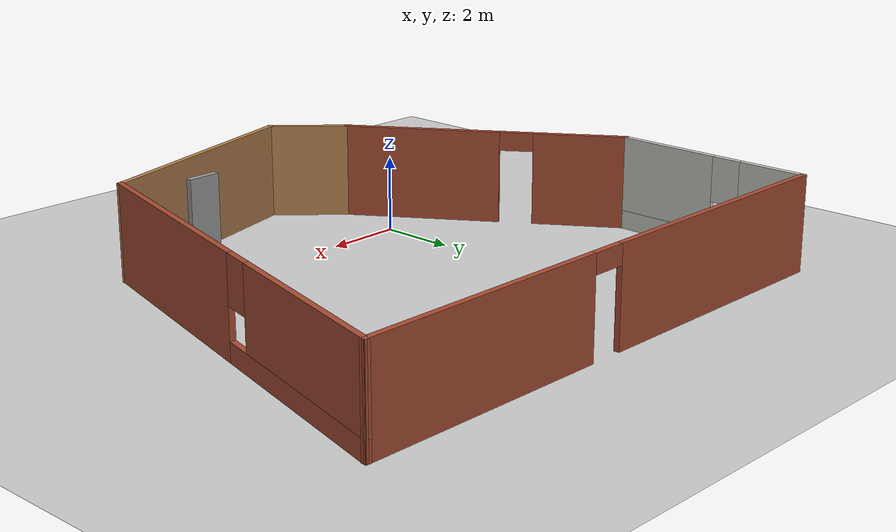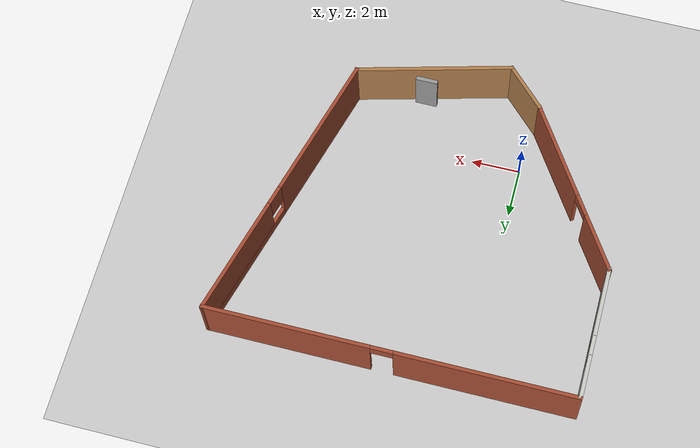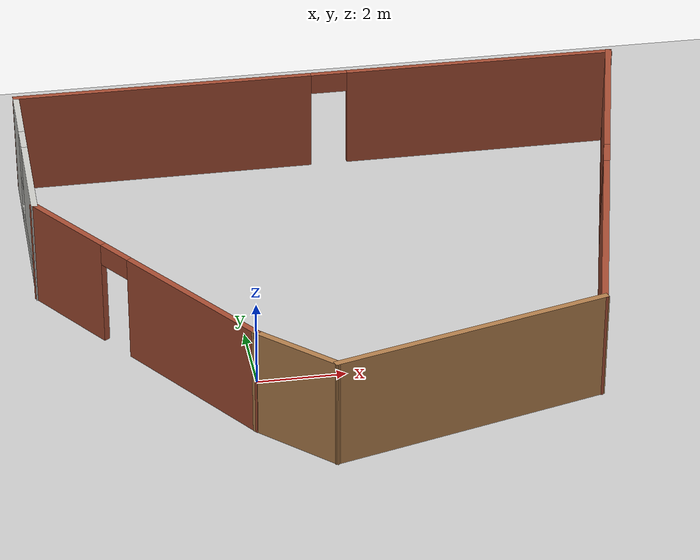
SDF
<sdf version="1.7">
 <world name="default">
  <light name="sun" type="directional">
   <pose>0 0 10 0 -0 0</pose>
   <diffuse>0.8 0.8 0.8 1</diffuse>
   <specular>0.2 0.2 0.2 1</specular>
   <attenuation>
    <range>1000</range>
    <constant>0.9</constant>
    <linear>0.01</linear>
    <quadratic>0.001</quadratic>
   </attenuation>
   <direction>-0.5 0.1 -0.9</direction>
   <spot><inner_angle>0</inner_angle><outer_angle>0</outer_angle><falloff>0</falloff></spot>
  </light>
  <model name="ground_plane">
   <static>1</static>
   <link name="link">
    <collision name="collision">
     <geometry><plane><normal>0 0 1</normal><size>100 100</size></plane></geometry>
     <surface>
      <contact><collide_bitmask>65535</collide_bitmask></contact>
      <friction><ode><mu>100</mu><mu2>50</mu2></ode></friction>
     </surface>
    </collision>
    <visual name="visual">
     <cast_shadows>0</cast_shadows>
     <geometry><plane><normal>0 0 1</normal><size>100 100</size></plane></geometry>
     <material>
      <script><uri>file://media/materials/scripts/gazebo.material</uri><name>Gazebo/Grey</name></script>
     </material>
    </visual>
   </link>
  </model>
  <gravity>0 0 -9.8</gravity>
  <magnetic_field>6e-06 2.3e-05 -4.2e-05</magnetic_field>
  <atmosphere type="adiabatic"/>
  <physics type="ode">
   <max_step_size>0.001</max_step_size>
   <real_time_factor>1</real_time_factor>
   <real_time_update_rate>1000</real_time_update_rate>
  </physics>
  <scene><ambient>0.4 0.4 0.4 1</ambient><background>0.7 0.7 0.7 1</background><shadows>1</shadows></scene>
  <audio><device>default</device></audio>
  <spherical_coordinates>
   <surface_model>EARTH_WGS84</surface_model>
   <latitude_deg>0</latitude_deg>
   <longitude_deg>0</longitude_deg>
   <elevation>0</elevation>
   <heading_deg>0</heading_deg>
  </spherical_coordinates>
  <model name="my_building">
   <pose>2.98449 3.17283 0 0 -0 0</pose>
   <link name="Door_1">
    <collision name="Door_1_Collision">
     <geometry><box><size>0.9 0.17 2</size></box></geometry>
     <pose>0 0 1 0 -0 0</pose>
    </collision>
    <visual name="Door_1_Visual">
     <pose>0 0 1 0 -0 0</pose>
     <geometry><box><size>0.9 0.17 2</size></box></geometry>
     <material>
      <script><uri>file://media/materials/scripts/gazebo.material</uri><name>Gazebo/Grey</name></script>
     </material>
    </visual>
    <pose>1.51981 -5.38516 0 0 -0 0</pose>
   </link>
   <link name="Wall_0">
    <collision name="Wall_0_Collision">
     <geometry><box><size>2.25 0.15 2.5</size></box></geometry>
     <pose>0 0 1.25 0 -0 0</pose>
    </collision>
    <visual name="Wall_0_Visual">
     <pose>0 0 1.25 0 -0 0</pose>
     <geometry><box><size>2.25 0.15 2.5</size></box></geometry>
     <material>
      <script><uri>file://media/materials/scripts/gazebo.material</uri><name>Gazebo/Wood</name></script>
      <ambient>1 1 1 1</ambient>
     </material>
     <meta><layer>0</layer></meta>
    </visual>
    <pose>-2.51203 -5.79529 0 0 -0 -0.785398</pose>
   </link>
   <link name="Wall_1">
    <collision name="Wall_1_Collision">
     <geometry><box><size>6.5 0.15 2.5</size></box></geometry>
     <pose>0 0 1.25 0 -0 0</pose>
    </collision>
    <visual name="Wall_1_Visual">
     <pose>0 0 1.25 0 -0 0</pose>
     <geometry><box><size>6.5 0.15 2.5</size></box></geometry>
     <material>
      <script><uri>file://media/materials/scripts/gazebo.material</uri><name>Gazebo/Wood</name></script>
      <ambient>1 1 1 1</ambient>
     </material>
     <meta><layer>0</layer></meta>
    </visual>
    <pose>1.29725 -5.71601 0 0 -0 0.261799</pose>
   </link>
   <link name="Wall_3">
    <pose>5.89757 0.828855 0 0 -0 1.309</pose>
    <visual name="Wall_3_Visual_0">
     <pose>-2.92033 0 1.25 0 -0 0</pose>
     <geometry><box><size>6.15933 0.15 2.5</size></box></geometry>
     <material>
      <script><uri>file://media/materials/scripts/gazebo.material</uri><name>Gazebo/Bricks</name></script>
      <ambient>1 1 1 1</ambient>
     </material>
     <meta><layer>0</layer></meta>
    </visual>
    <collision name="Wall_3_Collision_0">
     <geometry><box><size>6.15933 0.15 2.5</size></box></geometry>
     <pose>-2.92033 0 1.25 0 -0 0</pose>
    </collision>
    <visual name="Wall_3_Visual_1">
     <pose>3.07967 0 0.25 0 -0 0</pose>
     <geometry><box><size>5.84067 0.15 0.5</size></box></geometry>
     <material>
      <script><uri>file://media/materials/scripts/gazebo.material</uri><name>Gazebo/Bricks</name></script>
      <ambient>1 1 1 1</ambient>
     </material>
     <meta><layer>0</layer></meta>
    </visual>
    <collision name="Wall_3_Collision_1">
     <geometry><box><size>5.84067 0.15 0.5</size></box></geometry>
     <pose>3.07967 0 0.25 0 -0 0</pose>
    </collision>
    <visual name="Wall_3_Visual_2">
     <pose>3.47967 0 1.5 0 -0 0</pose>
     <geometry><box><size>5.04066 0.15 2</size></box></geometry>
     <material>
      <script><uri>file://media/materials/scripts/gazebo.material</uri><name>Gazebo/Bricks</name></script>
      <ambient>1 1 1 1</ambient>
     </material>
     <meta><layer>0</layer></meta>
    </visual>
    <collision name="Wall_3_Collision_2">
     <geometry><box><size>5.04066 0.15 2</size></box></geometry>
     <pose>3.47967 0 1.5 0 -0 0</pose>
    </collision>
    <visual name="Wall_3_Visual_3">
     <pose>0.559335 0 1.9 0 -0 0</pose>
     <geometry><box><size>0.8 0.15 1.2</size></box></geometry>
     <material>
      <script><uri>file://media/materials/scripts/gazebo.material</uri><name>Gazebo/Bricks</name></script>
      <ambient>1 1 1 1</ambient>
     </material>
     <meta><layer>0</layer></meta>
    </visual>
    <collision name="Wall_3_Collision_3">
     <geometry><box><size>0.8 0.15 1.2</size></box></geometry>
     <pose>0.559335 0 1.9 0 -0 0</pose>
    </collision>
   </link>
   <link name="Wall_4">
    <pose>0.006069 6.55197 0 0 -0 3.14159</pose>
    <visual name="Wall_4_Visual_0">
     <pose>-4.12363 0 1.25 0 -0 0</pose>
     <geometry><box><size>6.75275 0.15 2.5</size></box></geometry>
     <material>
      <script><uri>file://media/materials/scripts/gazebo.material</uri><name>Gazebo/Bricks</name></script>
      <ambient>1 1 1 1</ambient>
     </material>
     <meta><layer>0</layer></meta>
    </visual>
    <collision name="Wall_4_Collision_0">
     <geometry><box><size>6.75275 0.15 2.5</size></box></geometry>
     <pose>-4.12363 0 1.25 0 -0 0</pose>
    </collision>
    <visual name="Wall_4_Visual_1">
     <pose>3.82637 0 1.25 0 -0 0</pose>
     <geometry><box><size>7.34725 0.15 2.5</size></box></geometry>
     <material>
      <script><uri>file://media/materials/scripts/gazebo.material</uri><name>Gazebo/Bricks</name></script>
      <ambient>1 1 1 1</ambient>
     </material>
     <meta><layer>0</layer></meta>
    </visual>
    <collision name="Wall_4_Collision_1">
     <geometry><box><size>7.34725 0.15 2.5</size></box></geometry>
     <pose>3.82637 0 1.25 0 -0 0</pose>
    </collision>
    <visual name="Wall_4_Visual_2">
     <pose>-0.297254 0 2.25 0 -0 0</pose>
     <geometry><box><size>0.9 0.15 0.5</size></box></geometry>
     <material>
      <script><uri>file://media/materials/scripts/gazebo.material</uri><name>Gazebo/Bricks</name></script>
      <ambient>1 1 1 1</ambient>
     </material>
     <meta><layer>0</layer></meta>
    </visual>
    <collision name="Wall_4_Collision_2">
     <geometry><box><size>0.9 0.15 0.5</size></box></geometry>
     <pose>-0.297254 0 2.25 0 -0 0</pose>
    </collision>
   </link>
   <link name="Wall_5">
    <pose>-7.41893 3.87697 0 0 -0 -1.5708</pose>
    <visual name="Wall_5_Visual_0">
     <pose>-1.83329 0 1.25 0 -0 0</pose>
     <geometry><box><size>1.83341 0.15 2.5</size></box></geometry>
     <material>
      <script><uri>file://media/materials/scripts/gazebo.material</uri><name>Gazebo/CeilingTiled</name></script>
      <ambient>1 1 1 1</ambient>
     </material>
     <meta><layer>0</layer></meta>
    </visual>
    <collision name="Wall_5_Collision_0">
     <geometry><box><size>1.83341 0.15 2.5</size></box></geometry>
     <pose>-1.83329 0 1.25 0 -0 0</pose>
    </collision>
    <visual name="Wall_5_Visual_1">
     <pose>0.916706 0 0.25 0 -0 0</pose>
     <geometry><box><size>3.66659 0.15 0.5</size></box></geometry>
     <material>
      <script><uri>file://media/materials/scripts/gazebo.material</uri><name>Gazebo/CeilingTiled</name></script>
      <ambient>1 1 1 1</ambient>
     </material>
     <meta><layer>0</layer></meta>
    </visual>
    <collision name="Wall_5_Collision_1">
     <geometry><box><size>3.66659 0.15 0.5</size></box></geometry>
     <pose>0.916706 0 0.25 0 -0 0</pose>
    </collision>
    <visual name="Wall_5_Visual_2">
     <pose>1.31671 0 1.5 0 -0 0</pose>
     <geometry><box><size>2.86659 0.15 2</size></box></geometry>
     <material>
      <script><uri>file://media/materials/scripts/gazebo.material</uri><name>Gazebo/CeilingTiled</name></script>
      <ambient>1 1 1 1</ambient>
     </material>
     <meta><layer>0</layer></meta>
    </visual>
    <collision name="Wall_5_Collision_2">
     <geometry><box><size>2.86659 0.15 2</size></box></geometry>
     <pose>1.31671 0 1.5 0 -0 0</pose>
    </collision>
    <visual name="Wall_5_Visual_3">
     <pose>-0.516587 0 1.9 0 -0 0</pose>
     <geometry><box><size>0.8 0.15 1.2</size></box></geometry>
     <material>
      <script><uri>file://media/materials/scripts/gazebo.material</uri><name>Gazebo/CeilingTiled</name></script>
      <ambient>1 1 1 1</ambient>
     </material>
     <meta><layer>0</layer></meta>
    </visual>
    <collision name="Wall_5_Collision_3">
     <geometry><box><size>0.8 0.15 1.2</size></box></geometry>
     <pose>-0.516587 0 1.9 0 -0 0</pose>
    </collision>
   </link>
   <link name="Wall_6">
    <pose>-5.33671 -1.92543 0 0 -0 -0.983394</pose>
    <visual name="Wall_6_Visual_0">
     <pose>-2.56976 0 1.25 0 -0 0</pose>
     <geometry><box><size>2.5248 0.15 2.5</size></box></geometry>
     <material>
      <script><uri>file://media/materials/scripts/gazebo.material</uri><name>Gazebo/Bricks</name></script>
      <ambient>1 1 1 1</ambient>
     </material>
     <meta><layer>0</layer></meta>
    </visual>
    <collision name="Wall_6_Collision_0">
     <geometry><box><size>2.5248 0.15 2.5</size></box></geometry>
     <pose>-2.56976 0 1.25 0 -0 0</pose>
    </collision>
    <visual name="Wall_6_Visual_1">
     <pose>1.7124 0 1.25 0 -0 0</pose>
     <geometry><box><size>4.23952 0.15 2.5</size></box></geometry>
     <material>
      <script><uri>file://media/materials/scripts/gazebo.material</uri><name>Gazebo/Bricks</name></script>
      <ambient>1 1 1 1</ambient>
     </material>
     <meta><layer>0</layer></meta>
    </visual>
    <collision name="Wall_6_Collision_1">
     <geometry><box><size>4.23952 0.15 2.5</size></box></geometry>
     <pose>1.7124 0 1.25 0 -0 0</pose>
    </collision>
    <visual name="Wall_6_Visual_2">
     <pose>-0.85736 0 2.25 0 -0 0</pose>
     <geometry><box><size>0.9 0.15 0.5</size></box></geometry>
     <material>
      <script><uri>file://media/materials/scripts/gazebo.material</uri><name>Gazebo/Bricks</name></script>
      <ambient>1 1 1 1</ambient>
     </material>
     <meta><layer>0</layer></meta>
    </visual>
    <collision name="Wall_6_Collision_2">
     <geometry><box><size>0.9 0.15 0.5</size></box></geometry>
     <pose>-0.85736 0 2.25 0 -0 0</pose>
    </collision>
   </link>
   <static>1</static>
  </model>
 </world>
</sdf>
